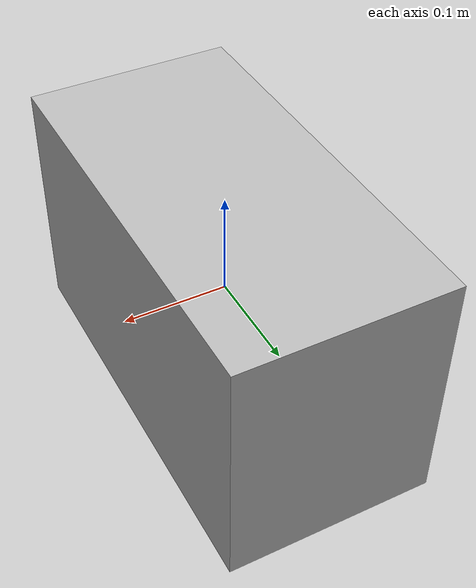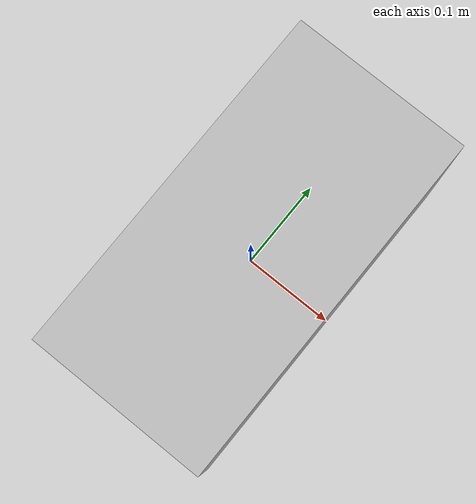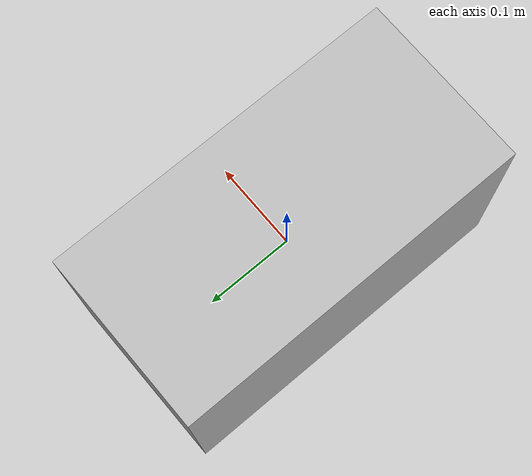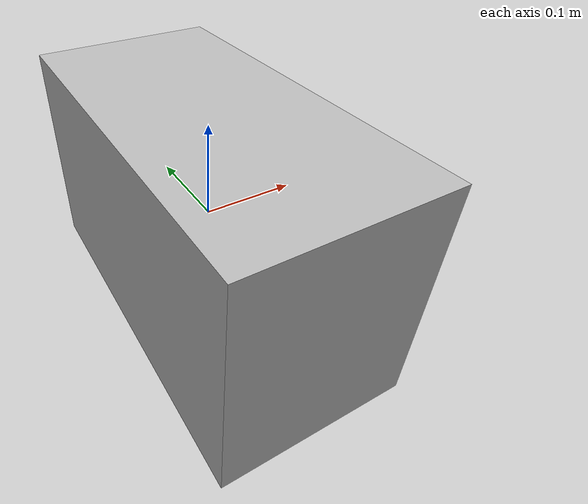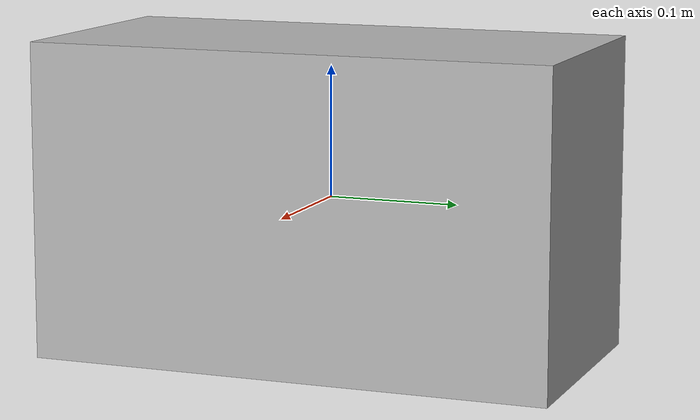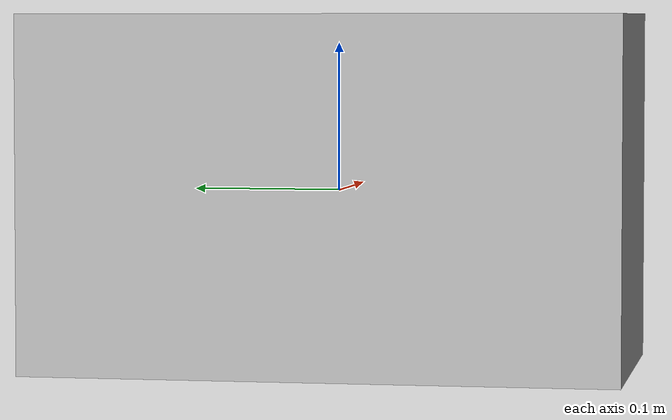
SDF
<?xml version='1.0'?>
<sdf version='1.6'>
  <model name="box_l200_w400_h240">
      <static>true</static>
      <link name='link'>
        <collision name='collision'>
          <geometry>
         <box>
            <size>0.2 0.4 0.24</size>
          </box>
          </geometry>
          <surface>
            <friction>
              <ode>
                <mu>100</mu>
                <mu2>50</mu2>
              </ode>
            </friction>
          </surface>
        </collision>
        <visual name='visual'>
          <cast_shadows>0</cast_shadows>
          <geometry>
         <box>
            <size>0.2 0.4 0.24</size>
          </box>
          </geometry>
          <material>
            <script>
              <uri>model://box_l200_w400_h240/materials/scripts</uri>
              <uri>model://box_l200_w400_h240/materials/textures/</uri>
              <name>box_l200_w400_h240/Image</name>
            </script>
          </material>
        </visual>
      </link>
  </model>
</sdf>
